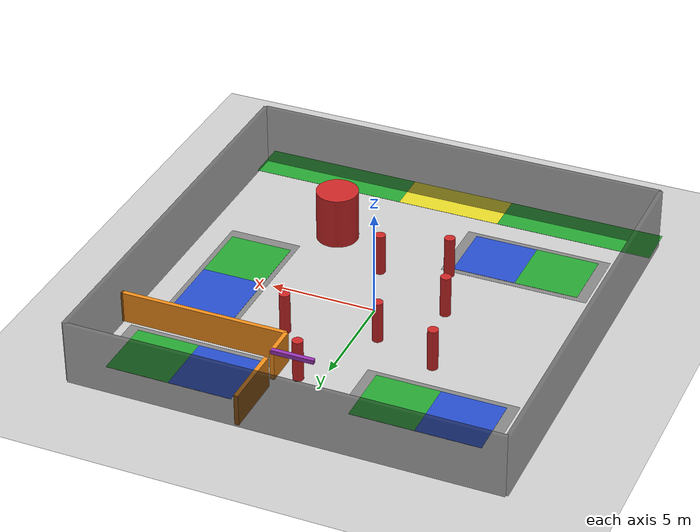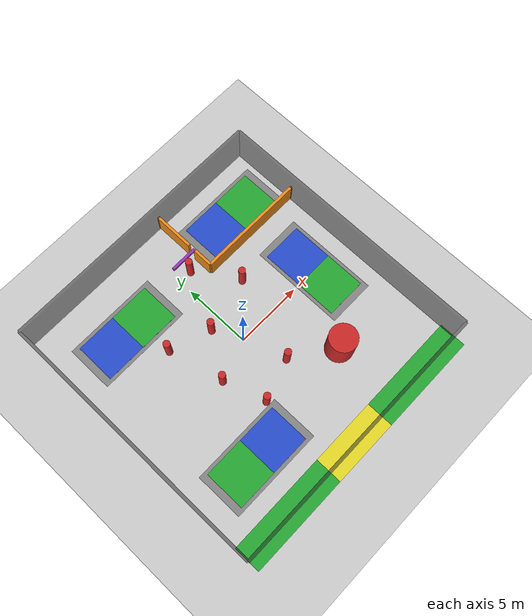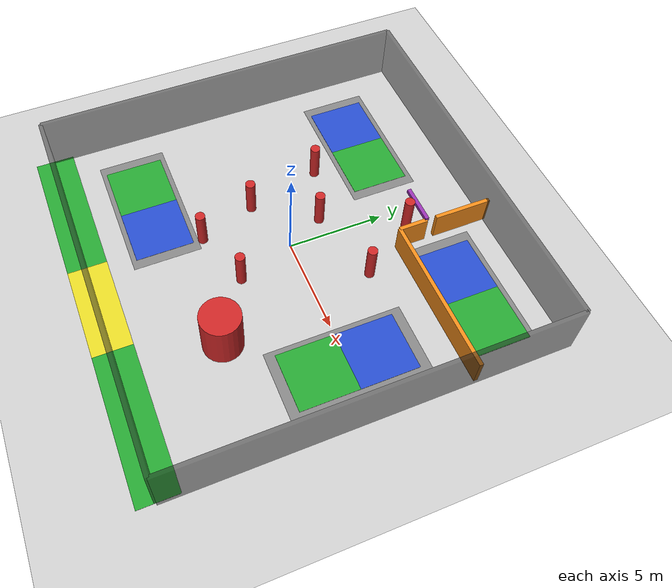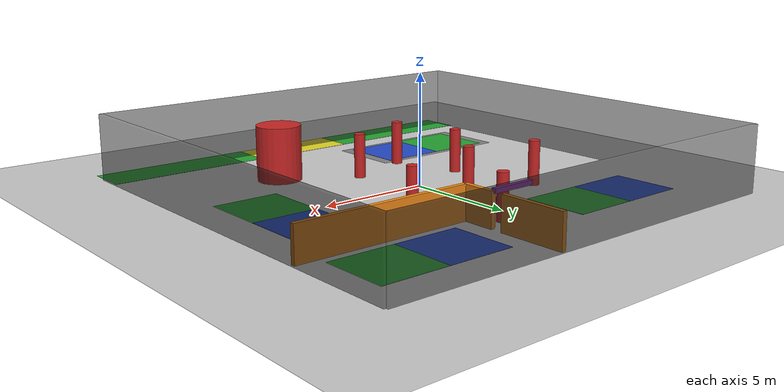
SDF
<?xml version="1.0" ?>
<sdf version="1.6">
  <world name="default">

    <include>
      <uri>model://sun</uri>
    </include>
    <include>
      <uri>model://ground_plane</uri>
    </include>

    <!-- 2. RESTRUCTURED PHYSICS BLOCK -->
    <!-- Moved gravity, magnetic_field, and other physics properties inside this block -->
    <physics name='default_physics' default='0' type='ode'>
      <gravity>0 0 -9.8</gravity>
      <magnetic_field>6e-06 2.3e-05 -4.2e-05</magnetic_field>
      <ode>
        <solver>
          <type>quick</type>
          <iters>50</iters>
          <sor>1.3</sor>
          <use_dynamic_moi_rescaling>0</use_dynamic_moi_rescaling>
        </solver>
        <constraints>
          <cfm>0</cfm>
          <erp>0.2</erp>
          <contact_max_correcting_vel>100</contact_max_correcting_vel>
          <contact_surface_layer>0.001</contact_surface_layer>
        </constraints>
      </ode>
      <max_step_size>0.004</max_step_size>
      <real_time_factor>1.0</real_time_factor>
      <real_time_update_rate>250</real_time_update_rate>
    </physics>

    <!-- 3. SCENE CONFIGURATION -->
    <scene>
      <grid>false</grid>
      <ambient>0.4 0.4 0.4 1</ambient>
      <background>0.7 0.7 0.7 1</background>
      <shadows>true</shadows>
    </scene>

    <!-- 4. ALL OTHER MODELS COPIED DIRECTLY -->
    <!-- The syntax for static models is compatible between versions -->

    <!-- Arena Walls (Safety Net) - Defines the 20x20m area -->
    <model name='safety_net_north'>
      <static>true</static>
      <pose>0 10 1.5 0 0 0</pose>
      <link name='link'>
        <collision name='collision'><geometry><box><size>20 0.2 3</size></box></geometry></collision>
        <visual name='visual'><geometry><box><size>20 0.2 3</size></box></geometry>
          <material><ambient>0.1 0.1 0.1 0.5</ambient><diffuse>0.1 0.1 0.1 0.5</diffuse></material>
        </visual>
      </link>
    </model>
    <model name='safety_net_south'>
      <static>true</static>
      <pose>0 -10 1.5 0 0 0</pose>
      <link name='link'>
        <collision name='collision'><geometry><box><size>20 0.2 3</size></box></geometry></collision>
        <visual name='visual'><geometry><box><size>20 0.2 3</size></box></geometry>
          <material><ambient>0.1 0.1 0.1 0.5</ambient><diffuse>0.1 0.1 0.1 0.5</diffuse></material>
        </visual>
      </link>
    </model>
    <model name='safety_net_east'>
      <static>true</static>
      <pose>10 0 1.5 0 0 0</pose>
      <link name='link'>
        <collision name='collision'><geometry><box><size>0.2 20 3</size></box></geometry></collision>
        <visual name='visual'><geometry><box><size>0.2 20 3</size></box></geometry>
          <material><ambient>0.1 0.1 0.1 0.5</ambient><diffuse>0.1 0.1 0.1 0.5</diffuse></material>
        </visual>
      </link>
    </model>
    <model name='safety_net_west'>
      <static>true</static>
      <pose>-10 0 1.5 0 0 0</pose>
      <link name='link'>
        <collision name='collision'><geometry><box><size>0.2 20 3</size></box></geometry></collision>
        <visual name='visual'><geometry><box><size>0.2 20 3</size></box></geometry>
          <material><ambient>0.1 0.1 0.1 0.5</ambient><diffuse>0.1 0.1 0.1 0.5</diffuse></material>
        </visual>
      </link>
    </model>

    <!-- Ground Markings (Visual Only) -->
    <model name='launch_zone'>
      <static>true</static>
      <pose>0 -9.9 0.005 0 0 0</pose>
      <link name='visual_link'>
        <visual name='visual'>
          <geometry><box><size>5 2 0.01</size></box></geometry>
          <material><script><uri>file://media/materials/scripts/gazebo.material</uri><name>Gazebo/Yellow</name></script></material>
        </visual>
      </link>
    </model>
    <model name='supply_zone_left'>
      <static>true</static>
      <pose>-6.25 -9.9 0.005 0 0 0</pose>
      <link name='visual_link'>
        <visual name='visual'>
          <geometry><box><size>7.5 2 0.01</size></box></geometry>
          <material><script><uri>file://media/materials/scripts/gazebo.material</uri><name>Gazebo/Green</name></script></material>
        </visual>
      </link>
    </model>
    <model name='supply_zone_right'>
      <static>true</static>
      <pose>6.25 -9.9 0.005 0 0 0</pose>
      <link name='visual_link'>
        <visual name='visual'>
          <geometry><box><size>7.5 2 0.01</size></box></geometry>
          <material><script><uri>file://media/materials/scripts/gazebo.material</uri><name>Gazebo/Green</name></script></material>
        </visual>
      </link>
    </model>

    <!-- Drop Zones & Hotspots (Visual Only) -->
    <model name='drop_zone_and_hotspots_set1'><static>true</static><link name='drop_zone_tl_link'><pose>-5 6 0.01 0 0 0</pose><visual name='visual'><geometry><box><size>7 3.5 0.01</size></box></geometry><material><ambient>0.5 0.5 0.5 0.8</ambient><diffuse>0.5 0.5 0.5 0.8</diffuse></material></visual></link><link name='hotspot_tl_blue_link'><pose>-6.5 6 0.02 0 0 0</pose><visual name='visual'><geometry><box><size>3 3 0.01</size></box></geometry><material><script><uri>file://media/materials/scripts/gazebo.material</uri><name>Gazebo/Blue</name></script></material></visual></link><link name='hotspot_tl_green_link'><pose>-3.5 6 0.02 0 0 0</pose><visual name='visual'><geometry><box><size>3 3 0.01</size></box></geometry><material><script><uri>file://media/materials/scripts/gazebo.material</uri><name>Gazebo/Green</name></script></material></visual></link></model>
    <model name='drop_zone_and_hotspots_set2'><static>true</static><link name='drop_zone_bl_link'><pose>-5 -6 0.01 0 0 0</pose><visual name='visual'><geometry><box><size>7 3.5 0.01</size></box></geometry><material><ambient>0.5 0.5 0.5 0.8</ambient><diffuse>0.5 0.5 0.5 0.8</diffuse></material></visual></link><link name='hotspot_bl_green_link'><pose>-6.5 -6 0.02 0 0 0</pose><visual name='visual'><geometry><box><size>3 3 0.01</size></box></geometry><material><script><uri>file://media/materials/scripts/gazebo.material</uri><name>Gazebo/Green</name></script></material></visual></link><link name='hotspot_bl_blue_link'><pose>-3.5 -6 0.02 0 0 0</pose><visual name='visual'><geometry><box><size>3 3 0.01</size></box></geometry><material><script><uri>file://media/materials/scripts/gazebo.material</uri><name>Gazebo/Blue</name></script></material></visual></link></model>
    <model name='drop_zone_and_hotspots_set3'><static>true</static><link name='drop_zone_tr_link'><pose>6 7 0.01 0 0 0</pose><visual name='visual'><geometry><box><size>7 3.5 0.01</size></box></geometry><material><ambient>0.5 0.5 0.5 0.8</ambient><diffuse>0.5 0.5 0.5 0.8</diffuse></material></visual></link><link name='hotspot_tr_blue_link'><pose>4.5 7 0.02 0 0 0</pose><visual name='visual'><geometry><box><size>3 3 0.01</size></box></geometry><material><script><uri>file://media/materials/scripts/gazebo.material</uri><name>Gazebo/Blue</name></script></material></visual></link><link name='hotspot_tr_green_link'><pose>7.5 7 0.02 0 0 0</pose><visual name='visual'><geometry><box><size>3 3 0.01</size></box></geometry><material><script><uri>file://media/materials/scripts/gazebo.material</uri><name>Gazebo/Green</name></script></material></visual></link></model>
    <model name='drop_zone_and_hotspots_set4'><static>true</static><link name='drop_zone_rm_link'><pose>7 0 0.01 0 0 0</pose><visual name='visual'><geometry><box><size>3.5 7 0.01</size></box></geometry><material><ambient>0.5 0.5 0.5 0.8</ambient><diffuse>0.5 0.5 0.5 0.8</diffuse></material></visual></link><link name='hotspot_rm_blue_link'><pose>7 1.5 0.02 0 0 0</pose><visual name='visual'><geometry><box><size>3 3 0.01</size></box></geometry><material><script><uri>file://media/materials/scripts/gazebo.material</uri><name>Gazebo/Blue</name></script></material></visual></link><link name='hotspot_rm_green_link'><pose>7 -1.5 0.02 0 0 0</pose><visual name='visual'><geometry><box><size>3 3 0.01</size></box></geometry><material><script><uri>file://media/materials/scripts/gazebo.material</uri><name>Gazebo/Green</name></script></material></visual></link></model>

    <!-- Obstacles -->
    <model name='large_pillar'>
      <static>true</static>
      <pose>4 -5 1.25 0 0 0</pose>
      <link name='link'>
        <collision name='collision'><geometry><cylinder><radius>1</radius><length>2.5</length></cylinder></geometry></collision>
        <visual name='visual'><geometry><cylinder><radius>1</radius><length>2.5</length></cylinder></geometry><material><script><uri>file://media/materials/scripts/gazebo.material</uri><name>Gazebo/Red</name></script></material></visual>
      </link>
    </model>

    <model name='small_pillars'>
      <static>true</static>
      <link name='pillar_1'><pose>-4 3 1 0 0 0</pose><collision name='c1'><geometry><cylinder><radius>0.25</radius><length>2</length></cylinder></geometry></collision><visual name='v1'><geometry><cylinder><radius>0.25</radius><length>2</length></cylinder></geometry><material><script><uri>file://media/materials/scripts/gazebo.material</uri><name>Gazebo/Red</name></script></material></visual></link>
      <link name='pillar_2'><pose>-1 2 1 0 0 0</pose><collision name='c2'><geometry><cylinder><radius>0.25</radius><length>2</length></cylinder></geometry></collision><visual name='v2'><geometry><cylinder><radius>0.25</radius><length>2</length></cylinder></geometry><material><script><uri>file://media/materials/scripts/gazebo.material</uri><name>Gazebo/Red</name></script></material></visual></link>
      <link name='pillar_3'><pose>1 6 1 0 0 0</pose><collision name='c3'><geometry><cylinder><radius>0.25</radius><length>2</length></cylinder></geometry></collision><visual name='v3'><geometry><cylinder><radius>0.25</radius><length>2</length></cylinder></geometry><material><script><uri>file://media/materials/scripts/gazebo.material</uri><name>Gazebo/Red</name></script></material></visual></link>
      <link name='pillar_4'><pose>-3 -1 1 0 0 0</pose><collision name='c4'><geometry><cylinder><radius>0.25</radius><length>2</length></cylinder></geometry></collision><visual name='v4'><geometry><cylinder><radius>0.25</radius><length>2</length></cylinder></geometry><material><script><uri>file://media/materials/scripts/gazebo.material</uri><name>Gazebo/Red</name></script></material></visual></link>
      <link name='pillar_5'><pose>1 -3 1 0 0 0</pose><collision name='c5'><geometry><cylinder><radius>0.25</radius><length>2</length></cylinder></geometry></collision><visual name='v5'><geometry><cylinder><radius>0.25</radius><length>2</length></cylinder></geometry><material><script><uri>file://media/materials/scripts/gazebo.material</uri><name>Gazebo/Red</name></script></material></visual></link>
      <link name='pillar_6'><pose>3 3 1 0 0 0</pose><collision name='c6'><geometry><cylinder><radius>0.25</radius><length>2</length></cylinder></geometry></collision><visual name='v6'><geometry><cylinder><radius>0.25</radius><length>2</length></cylinder></geometry><material><script><uri>file://media/materials/scripts/gazebo.material</uri><name>Gazebo/Red</name></script></material></visual></link>
      <link name='pillar_7'><pose>-2 -4 1 0 0 0</pose><collision name='c7'><geometry><cylinder><radius>0.25</radius><length>2</length></cylinder></geometry></collision><visual name='v7'><geometry><cylinder><radius>0.25</radius><length>2</length></cylinder></geometry><material><script><uri>file://media/materials/scripts/gazebo.material</uri><name>Gazebo/Red</name></script></material></visual></link>
    </model>

    <model name='bonus_zone_walls'>
      <static>true</static>
      <link name='h_wall'><pose>6 5 0.75 0 0 0</pose><collision name='ch'><geometry><box><size>8 0.2 1.5</size></box></geometry></collision><visual name='vh'><geometry><box><size>8 0.2 1.5</size></box></geometry><material><script><uri>file://media/materials/scripts/gazebo.material</uri><name>Gazebo/Orange</name></script></material></visual></link>
      <link name='v_wall_1'><pose>2 5.75 0.75 0 0 0</pose><collision name='cv1'><geometry><box><size>0.2 1.5 1.5</size></box></geometry></collision><visual name='vv1'><geometry><box><size>0.2 1.5 1.5</size></box></geometry><material><script><uri>file://media/materials/scripts/gazebo.material</uri><name>Gazebo/Orange</name></script></material></visual></link>
      <link name='v_wall_2'><pose>2 8.5 0.75 0 0 0</pose><collision name='cv2'><geometry><box><size>0.2 3 1.5</size></box></geometry></collision><visual name='vv2'><geometry><box><size>0.2 3 1.5</size></box></geometry><material><script><uri>file://media/materials/scripts/gazebo.material</uri><name>Gazebo/Orange</name></script></material></visual></link>
    </model>

    <model name='high_beam'>
      <static>true</static>
      <pose>1 6.5 1.5 0 0 0</pose>
      <link name='link'>
        <collision name='collision'><geometry><box><size>2 0.2 0.2</size></box></geometry></collision>
        <visual name='visual'><geometry><box><size>2 0.2 0.2</size></box></geometry><material><script><uri>file://media/materials/scripts/gazebo.material</uri><name>Gazebo/Purple</name></script></material></visual>
      </link>
    </model>

    <spherical_coordinates>
      <surface_model>EARTH_WGS84</surface_model>
      <world_frame_orientation>ENU</world_frame_orientation>
      <latitude_deg>47.397971057728974</latitude_deg>
      <longitude_deg> 8.546163739800146</longitude_deg>
      <elevation>0</elevation>
    </spherical_coordinates>

  </world>
</sdf>
